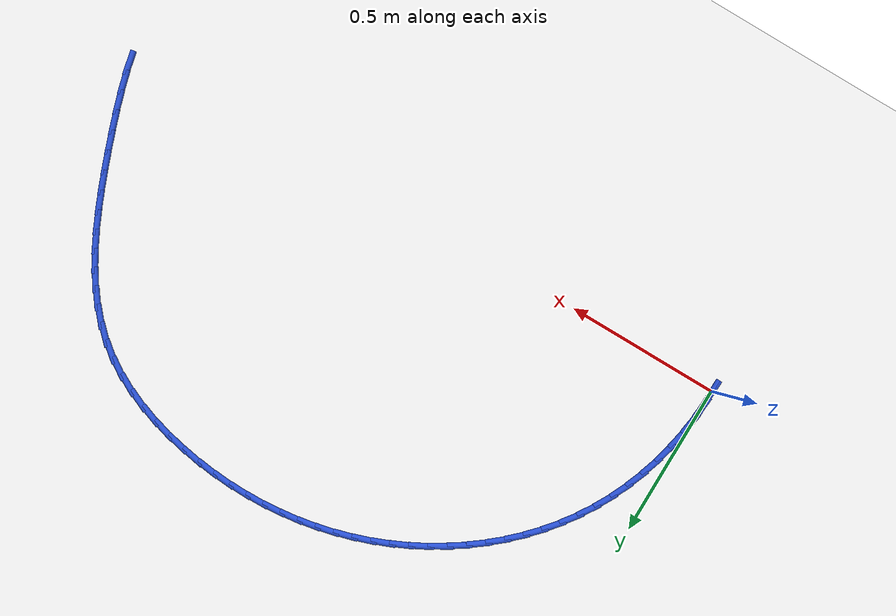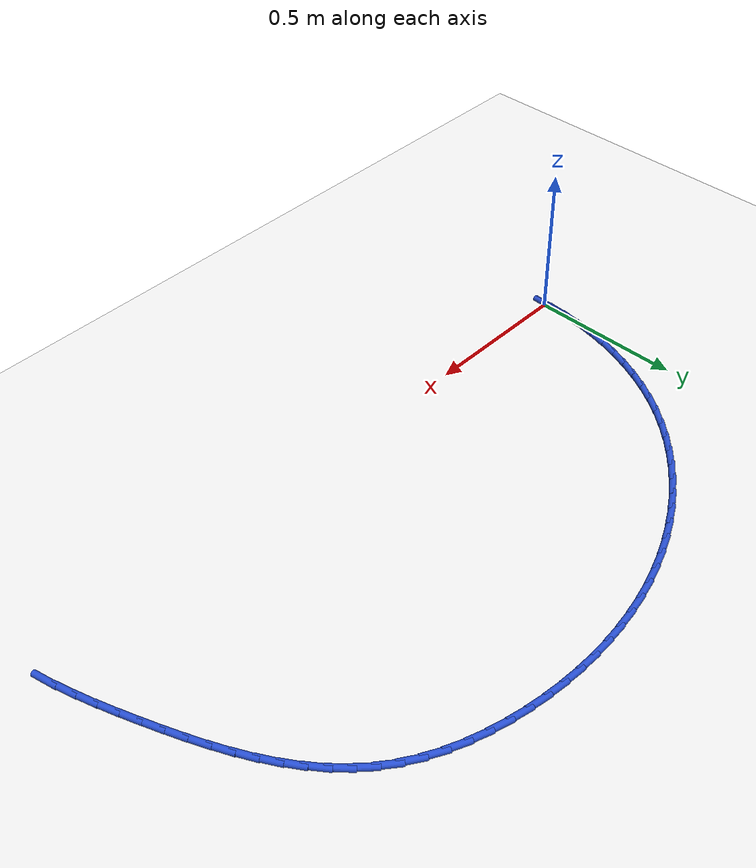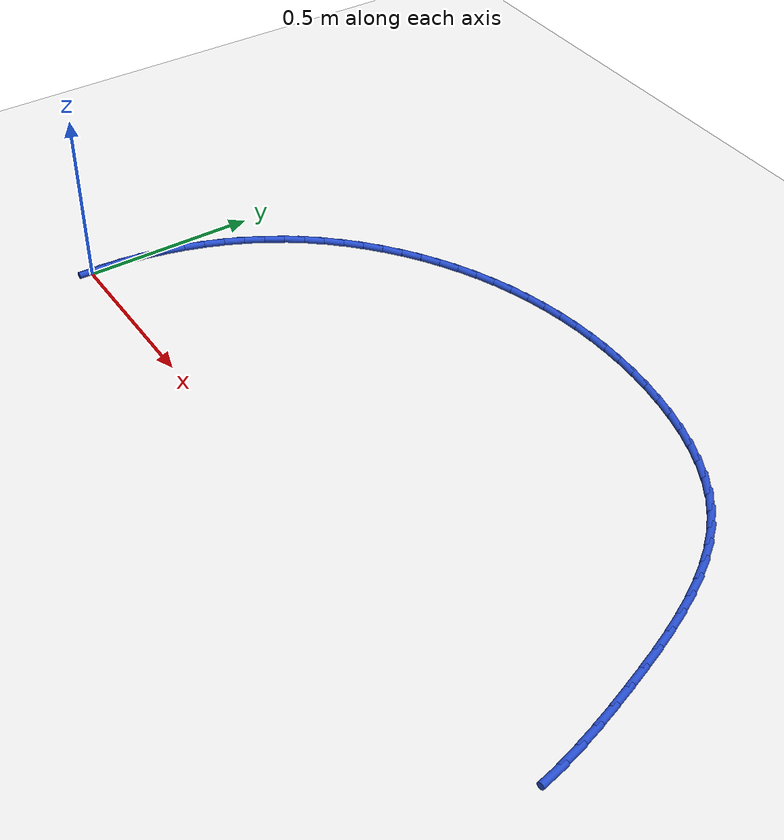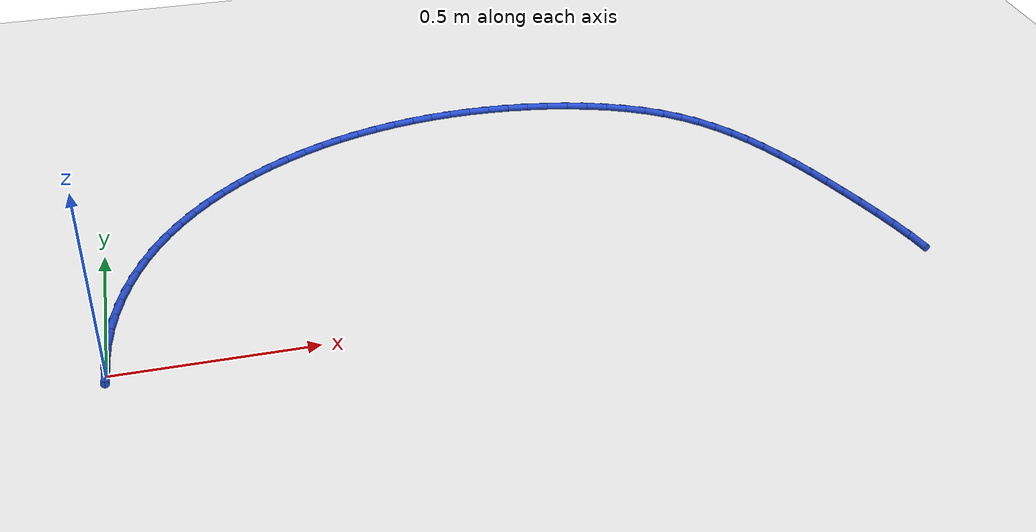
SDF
<sdf version="1.6">
 <world name="default">
  <model name="ground_plane">
   <static>1</static>
   <link name="link">
    <collision name="collision">
     <geometry><plane><normal>0 0 1</normal><size>100 100</size></plane></geometry>
     <surface><friction><ode><mu>100</mu><mu2>50</mu2></ode></friction></surface>
    </collision>
    <visual name="visual">
     <cast_shadows>0</cast_shadows>
     <geometry><plane><normal>0 0 1</normal><size>100 100</size></plane></geometry>
     <material>
      <script><uri>file://media/materials/scripts/gazebo.material</uri><name>Gazebo/WhiteGlow</name></script>
     </material>
    </visual>
   </link>
  </model>
  <model name="line">
   <link name="link_0">
    <pose>6.245004513516506e-17 -5.551115123125783e-17 0.01 0 1.57 1.5422545353050512</pose>
    <collision name="collision">
     <geometry><cylinder><radius>0.01</radius><length>0.08</length></cylinder></geometry>
    </collision>
    <visual name="visual">
     <material>
      <script><name>Gazebo/Blue</name><uri>file://media/materials/scripts/gazebo.material</uri></script>
     </material>
     <geometry><cylinder><radius>0.01</radius><length>0.08</length></cylinder></geometry>
    </visual>
   </link>
   <link name="link_1">
    <pose>0.0017198412556130806 0.06024058501088504 0.01 0 1.57 1.482906403337347</pose>
    <collision name="collision">
     <geometry><cylinder><radius>0.01</radius><length>0.08</length></cylinder></geometry>
    </collision>
    <visual name="visual">
     <material>
      <script><name>Gazebo/Blue</name><uri>file://media/materials/scripts/gazebo.material</uri></script>
     </material>
     <geometry><cylinder><radius>0.01</radius><length>0.08</length></cylinder></geometry>
    </visual>
   </link>
   <link name="link_2">
    <pose>0.006995658251448938 0.12011349415279156 0.01 0 1.57 1.4235357169125398</pose>
    <collision name="collision">
     <geometry><cylinder><radius>0.01</radius><length>0.08</length></cylinder></geometry>
    </collision>
    <visual name="visual">
     <material>
      <script><name>Gazebo/Blue</name><uri>file://media/materials/scripts/gazebo.material</uri></script>
     </material>
     <geometry><cylinder><radius>0.01</radius><length>0.08</length></cylinder></geometry>
    </visual>
   </link>
   <link name="link_3">
    <pose>0.015792316660446903 0.17941637971473812 0.01 0 1.57 1.3639521039334233</pose>
    <collision name="collision">
     <geometry><cylinder><radius>0.01</radius><length>0.08</length></cylinder></geometry>
    </collision>
    <visual name="visual">
     <material>
      <script><name>Gazebo/Blue</name><uri>file://media/materials/scripts/gazebo.material</uri></script>
     </material>
     <geometry><cylinder><radius>0.01</radius><length>0.08</length></cylinder></geometry>
    </visual>
   </link>
   <link name="link_4">
    <pose>0.028074682155546274 0.23794689398574337 0.01 0 1.57 1.3039637577982874</pose>
    <collision name="collision">
     <geometry><cylinder><radius>0.01</radius><length>0.08</length></cylinder></geometry>
    </collision>
    <visual name="visual">
     <material>
      <script><name>Gazebo/Blue</name><uri>file://media/materials/scripts/gazebo.material</uri></script>
     </material>
     <geometry><cylinder><radius>0.01</radius><length>0.08</length></cylinder></geometry>
    </visual>
   </link>
   <link name="link_5">
    <pose>0.043807620409686346 0.2955026892548259 0.01 0 1.57 1.2433820574007861</pose>
    <collision name="collision">
     <geometry><cylinder><radius>0.01</radius><length>0.08</length></cylinder></geometry>
    </collision>
    <visual name="visual">
     <material>
      <script><name>Gazebo/Blue</name><uri>file://media/materials/scripts/gazebo.material</uri></script>
     </material>
     <geometry><cylinder><radius>0.01</radius><length>0.08</length></cylinder></geometry>
    </visual>
   </link>
   <link name="link_6">
    <pose>0.06295599709580636 0.3518814178110041 0.01 0 1.57 1.1820266064572256</pose>
    <collision name="collision">
     <geometry><cylinder><radius>0.01</radius><length>0.08</length></cylinder></geometry>
    </collision>
    <visual name="visual">
     <material>
      <script><name>Gazebo/Blue</name><uri>file://media/materials/scripts/gazebo.material</uri></script>
     </material>
     <geometry><cylinder><radius>0.01</radius><length>0.08</length></cylinder></geometry>
    </visual>
   </link>
   <link name="link_7">
    <pose>0.08548467788684563 0.4068807319432969 0.01 0 1.57 1.1197308585095516</pose>
    <collision name="collision">
     <geometry><cylinder><radius>0.01</radius><length>0.08</length></cylinder></geometry>
    </collision>
    <visual name="visual">
     <material>
      <script><name>Gazebo/Blue</name><uri>file://media/materials/scripts/gazebo.material</uri></script>
     </material>
     <geometry><cylinder><radius>0.01</radius><length>0.08</length></cylinder></geometry>
    </visual>
   </link>
   <link name="link_8">
    <pose>0.11135852845574347 0.46029828394072275 0.01 0 1.57 1.0563484404465557</pose>
    <collision name="collision">
     <geometry><cylinder><radius>0.01</radius><length>0.08</length></cylinder></geometry>
    </collision>
    <visual name="visual">
     <material>
      <script><name>Gazebo/Blue</name><uri>file://media/materials/scripts/gazebo.material</uri></script>
     </material>
     <geometry><cylinder><radius>0.01</radius><length>0.08</length></cylinder></geometry>
    </visual>
   </link>
   <link name="link_9">
    <pose>0.14054241447543914 0.5119317260923003 0.01 0 1.57 0.9918075284965097</pose>
    <collision name="collision">
     <geometry><cylinder><radius>0.01</radius><length>0.08</length></cylinder></geometry>
    </collision>
    <visual name="visual">
     <material>
      <script><name>Gazebo/Blue</name><uri>file://media/materials/scripts/gazebo.material</uri></script>
     </material>
     <geometry><cylinder><radius>0.01</radius><length>0.08</length></cylinder></geometry>
    </visual>
   </link>
   <link name="link_10">
    <pose>0.1729988449360283 0.5615802368410384 0.01 0 1.57 0.9275960890173353</pose>
    <collision name="collision">
     <geometry><cylinder><radius>0.01</radius><length>0.08</length></cylinder></geometry>
    </collision>
    <visual name="visual">
     <material>
      <script><name>Gazebo/Blue</name><uri>file://media/materials/scripts/gazebo.material</uri></script>
     </material>
     <geometry><cylinder><radius>0.01</radius><length>0.08</length></cylinder></geometry>
    </visual>
   </link>
   <link name="link_11">
    <pose>0.20861174765855084 0.6090938826673559 0.01 0 1.57 0.8655169779158036</pose>
    <collision name="collision">
     <geometry><cylinder><radius>0.01</radius><length>0.08</length></cylinder></geometry>
    </collision>
    <visual name="visual">
     <material>
      <script><name>Gazebo/Blue</name><uri>file://media/materials/scripts/gazebo.material</uri></script>
     </material>
     <geometry><cylinder><radius>0.01</radius><length>0.08</length></cylinder></geometry>
    </visual>
   </link>
   <link name="link_12">
    <pose>0.24716992997784215 0.6543843287135226 0.01 0 1.57 0.8055218743646704</pose>
    <collision name="collision">
     <geometry><cylinder><radius>0.01</radius><length>0.08</length></cylinder></geometry>
    </collision>
    <visual name="visual">
     <material>
      <script><name>Gazebo/Blue</name><uri>file://media/materials/scripts/gazebo.material</uri></script>
     </material>
     <geometry><cylinder><radius>0.01</radius><length>0.08</length></cylinder></geometry>
    </visual>
   </link>
   <link name="link_13">
    <pose>0.28845649680297847 0.6973669329308972 0.01 0 1.57 0.7474024139879945</pose>
    <collision name="collision">
     <geometry><cylinder><radius>0.01</radius><length>0.08</length></cylinder></geometry>
    </collision>
    <visual name="visual">
     <material>
      <script><name>Gazebo/Blue</name><uri>file://media/materials/scripts/gazebo.material</uri></script>
     </material>
     <geometry><cylinder><radius>0.01</radius><length>0.08</length></cylinder></geometry>
    </visual>
   </link>
   <link name="link_14">
    <pose>0.332254553043036 0.7379570532708389 0.01 0 1.57 0.6909164010922515</pose>
    <collision name="collision">
     <geometry><cylinder><radius>0.01</radius><length>0.08</length></cylinder></geometry>
    </collision>
    <visual name="visual">
     <material>
      <script><name>Gazebo/Blue</name><uri>file://media/materials/scripts/gazebo.material</uri></script>
     </material>
     <geometry><cylinder><radius>0.01</radius><length>0.08</length></cylinder></geometry>
    </visual>
   </link>
   <link name="link_15">
    <pose>0.37834720360709156 0.7760700476847064 0.01 0 1.57 0.6357970400926016</pose>
    <collision name="collision">
     <geometry><cylinder><radius>0.01</radius><length>0.08</length></cylinder></geometry>
    </collision>
    <visual name="visual">
     <material>
      <script><name>Gazebo/Blue</name><uri>file://media/materials/scripts/gazebo.material</uri></script>
     </material>
     <geometry><cylinder><radius>0.01</radius><length>0.08</length></cylinder></geometry>
    </visual>
   </link>
   <link name="link_16">
    <pose>0.42651755340422115 0.8116212741238589 0.01 0 1.57 0.5817597976097881</pose>
    <collision name="collision">
     <geometry><cylinder><radius>0.01</radius><length>0.08</length></cylinder></geometry>
    </collision>
    <visual name="visual">
     <material>
      <script><name>Gazebo/Blue</name><uri>file://media/materials/scripts/gazebo.material</uri></script>
     </material>
     <geometry><cylinder><radius>0.01</radius><length>0.08</length></cylinder></geometry>
    </visual>
   </link>
   <link name="link_17">
    <pose>0.4765487073435012 0.8445260905396551 0.01 0 1.57 0.5285071727945438</pose>
    <collision name="collision">
     <geometry><cylinder><radius>0.01</radius><length>0.08</length></cylinder></geometry>
    </collision>
    <visual name="visual">
     <material>
      <script><name>Gazebo/Blue</name><uri>file://media/materials/scripts/gazebo.material</uri></script>
     </material>
     <geometry><cylinder><radius>0.01</radius><length>0.08</length></cylinder></geometry>
    </visual>
   </link>
   <link name="link_18">
    <pose>0.5282237703340081 0.8746998548834537 0.01 0 1.57 0.4757317513545048</pose>
    <collision name="collision">
     <geometry><cylinder><radius>0.01</radius><length>0.08</length></cylinder></geometry>
    </collision>
    <visual name="visual">
     <material>
      <script><name>Gazebo/Blue</name><uri>file://media/materials/scripts/gazebo.material</uri></script>
     </material>
     <geometry><cylinder><radius>0.01</radius><length>0.08</length></cylinder></geometry>
    </visual>
   </link>
   <link name="link_19">
    <pose>0.5813258472848185 0.9020579251066144 0.01 0 1.57 0.42311829353588654</pose>
    <collision name="collision">
     <geometry><cylinder><radius>0.01</radius><length>0.08</length></cylinder></geometry>
    </collision>
    <visual name="visual">
     <material>
      <script><name>Gazebo/Blue</name><uri>file://media/materials/scripts/gazebo.material</uri></script>
     </material>
     <geometry><cylinder><radius>0.01</radius><length>0.08</length></cylinder></geometry>
    </visual>
   </link>
   <link name="link_20">
    <pose>0.6356381169394546 0.9265157144742953 0.01 0 1.57 0.37051850703982675</pose>
    <collision name="collision">
     <geometry><cylinder><radius>0.01</radius><length>0.08</length></cylinder></geometry>
    </collision>
    <visual name="visual">
     <material>
      <script><name>Gazebo/Blue</name><uri>file://media/materials/scripts/gazebo.material</uri></script>
     </material>
     <geometry><cylinder><radius>0.01</radius><length>0.08</length></cylinder></geometry>
    </visual>
   </link>
   <link name="link_21">
    <pose>0.690974520587996 0.9480116823152512 0.01 0 1.57 0.3182312223289976</pose>
    <collision name="collision">
     <geometry><cylinder><radius>0.01</radius><length>0.08</length></cylinder></geometry>
    </collision>
    <visual name="visual">
     <material>
      <script><name>Gazebo/Blue</name><uri>file://media/materials/scripts/gazebo.material</uri></script>
     </material>
     <geometry><cylinder><radius>0.01</radius><length>0.08</length></cylinder></geometry>
    </visual>
   </link>
   <link name="link_22">
    <pose>0.747227178427677 0.9665428564536253 0.01 0 1.57 0.2663684517099616</pose>
    <collision name="collision">
     <geometry><cylinder><radius>0.01</radius><length>0.08</length></cylinder></geometry>
    </collision>
    <visual name="visual">
     <material>
      <script><name>Gazebo/Blue</name><uri>file://media/materials/scripts/gazebo.material</uri></script>
     </material>
     <geometry><cylinder><radius>0.01</radius><length>0.08</length></cylinder></geometry>
    </visual>
   </link>
   <link name="link_23">
    <pose>0.8043004459291213 0.9821154308886725 0.01 0 1.57 0.21497468979117962</pose>
    <collision name="collision">
     <geometry><cylinder><radius>0.01</radius><length>0.08</length></cylinder></geometry>
    </collision>
    <visual name="visual">
     <material>
      <script><name>Gazebo/Blue</name><uri>file://media/materials/scripts/gazebo.material</uri></script>
     </material>
     <geometry><cylinder><radius>0.01</radius><length>0.08</length></cylinder></geometry>
    </visual>
   </link>
   <link name="link_24">
    <pose>0.8620986785629526 0.9947355996196484 0.01 0 1.57 0.16408324407698668</pose>
    <collision name="collision">
     <geometry><cylinder><radius>0.01</radius><length>0.08</length></cylinder></geometry>
    </collision>
    <visual name="visual">
     <material>
      <script><name>Gazebo/Blue</name><uri>file://media/materials/scripts/gazebo.material</uri></script>
     </material>
     <geometry><cylinder><radius>0.01</radius><length>0.08</length></cylinder></geometry>
    </visual>
   </link>
   <link name="link_25">
    <pose>0.9205262317997945 1.0044095566458084 0.01 0 1.57 0.11371688870192419</pose>
    <collision name="collision">
     <geometry><cylinder><radius>0.01</radius><length>0.08</length></cylinder></geometry>
    </collision>
    <visual name="visual">
     <material>
      <script><name>Gazebo/Blue</name><uri>file://media/materials/scripts/gazebo.material</uri></script>
     </material>
     <geometry><cylinder><radius>0.01</radius><length>0.08</length></cylinder></geometry>
    </visual>
   </link>
   <link name="link_26">
    <pose>0.9794874611102712 1.0111434959664083 0.01 0 1.57 0.063888737870298</pose>
    <collision name="collision">
     <geometry><cylinder><radius>0.01</radius><length>0.08</length></cylinder></geometry>
    </collision>
    <visual name="visual">
     <material>
      <script><name>Gazebo/Blue</name><uri>file://media/materials/scripts/gazebo.material</uri></script>
     </material>
     <geometry><cylinder><radius>0.01</radius><length>0.08</length></cylinder></geometry>
    </visual>
   </link>
   <link name="link_27">
    <pose>1.0388867219650058 1.0149436115807031 0.01 0 1.57 0.014603277890756113</pose>
    <collision name="collision">
     <geometry><cylinder><radius>0.01</radius><length>0.08</length></cylinder></geometry>
    </collision>
    <visual name="visual">
     <material>
      <script><name>Gazebo/Blue</name><uri>file://media/materials/scripts/gazebo.material</uri></script>
     </material>
     <geometry><cylinder><radius>0.01</radius><length>0.08</length></cylinder></geometry>
    </visual>
   </link>
   <link name="link_28">
    <pose>1.0986283698346222 1.0158160974879482 0.01 0 1.57 -0.03414249933933138</pose>
    <collision name="collision">
     <geometry><cylinder><radius>0.01</radius><length>0.08</length></cylinder></geometry>
    </collision>
    <visual name="visual">
     <material>
      <script><name>Gazebo/Blue</name><uri>file://media/materials/scripts/gazebo.material</uri></script>
     </material>
     <geometry><cylinder><radius>0.01</radius><length>0.08</length></cylinder></geometry>
    </visual>
   </link>
   <link name="link_29">
    <pose>1.1586167601897444 1.0137671476873988 0.01 0 1.57 -0.08235791193319515</pose>
    <collision name="collision">
     <geometry><cylinder><radius>0.01</radius><length>0.08</length></cylinder></geometry>
    </collision>
    <visual name="visual">
     <material>
      <script><name>Gazebo/Blue</name><uri>file://media/materials/scripts/gazebo.material</uri></script>
     </material>
     <geometry><cylinder><radius>0.01</radius><length>0.08</length></cylinder></geometry>
    </visual>
   </link>
   <link name="link_30">
    <pose>1.2187562485009962 1.008802956178311 0.01 0 1.57 -0.13016420866006254</pose>
    <collision name="collision">
     <geometry><cylinder><radius>0.01</radius><length>0.08</length></cylinder></geometry>
    </collision>
    <visual name="visual">
     <material>
      <script><name>Gazebo/Blue</name><uri>file://media/materials/scripts/gazebo.material</uri></script>
     </material>
     <geometry><cylinder><radius>0.01</radius><length>0.08</length></cylinder></geometry>
    </visual>
   </link>
   <link name="link_31">
    <pose>1.2789387682545732 1.0009248033342002 0.01 0 1.57 -0.17959677034749258</pose>
    <collision name="collision">
     <geometry><cylinder><radius>0.01</radius><length>0.08</length></cylinder></geometry>
    </collision>
    <visual name="visual">
     <material>
      <script><name>Gazebo/Blue</name><uri>file://media/materials/scripts/gazebo.material</uri></script>
     </material>
     <geometry><cylinder><radius>0.01</radius><length>0.08</length></cylinder></geometry>
    </visual>
   </link>
   <link name="link_32">
    <pose>1.338841953811252 0.9900492016153145 0.01 0 1.57 -0.2329702816365525</pose>
    <collision name="collision">
     <geometry><cylinder><radius>0.01</radius><length>0.08</length></cylinder></geometry>
    </collision>
    <visual name="visual">
     <material>
      <script><name>Gazebo/Blue</name><uri>file://media/materials/scripts/gazebo.material</uri></script>
     </material>
     <geometry><cylinder><radius>0.01</radius><length>0.08</length></cylinder></geometry>
    </visual>
   </link>
   <link name="link_33">
    <pose>1.3979626036118833 0.9760211322353514 0.01 0 1.57 -0.2912826737884549</pose>
    <collision name="collision">
     <geometry><cylinder><radius>0.01</radius><length>0.08</length></cylinder></geometry>
    </collision>
    <visual name="visual">
     <material>
      <script><name>Gazebo/Blue</name><uri>file://media/materials/scripts/gazebo.material</uri></script>
     </material>
     <geometry><cylinder><radius>0.01</radius><length>0.08</length></cylinder></geometry>
    </visual>
   </link>
   <link name="link_34">
    <pose>1.4557918472892086 0.9586833340608533 0.01 0 1.57 -0.35554222887668857</pose>
    <collision name="collision">
     <geometry><cylinder><radius>0.01</radius><length>0.08</length></cylinder></geometry>
    </collision>
    <visual name="visual">
     <material>
      <script><name>Gazebo/Blue</name><uri>file://media/materials/scripts/gazebo.material</uri></script>
     </material>
     <geometry><cylinder><radius>0.01</radius><length>0.08</length></cylinder></geometry>
    </visual>
   </link>
   <link name="link_35">
    <pose>1.5118208144759706 0.9378785459583636 0.01 0 1.57 -0.4267962427611318</pose>
    <collision name="collision">
     <geometry><cylinder><radius>0.01</radius><length>0.08</length></cylinder></geometry>
    </collision>
    <visual name="visual">
     <material>
      <script><name>Gazebo/Blue</name><uri>file://media/materials/scripts/gazebo.material</uri></script>
     </material>
     <geometry><cylinder><radius>0.01</radius><length>0.08</length></cylinder></geometry>
    </visual>
   </link>
   <link name="link_36">
    <pose>1.5655406348049112 0.9134495067944248 0.01 0 1.57 -0.5060736631699572</pose>
    <collision name="collision">
     <geometry><cylinder><radius>0.01</radius><length>0.08</length></cylinder></geometry>
    </collision>
    <visual name="visual">
     <material>
      <script><name>Gazebo/Blue</name><uri>file://media/materials/scripts/gazebo.material</uri></script>
     </material>
     <geometry><cylinder><radius>0.01</radius><length>0.08</length></cylinder></geometry>
    </visual>
   </link>
   <link name="link_37">
    <pose>1.6164424379087727 0.8852389554355797 0.01 0 1.57 -0.5942730350571853</pose>
    <collision name="collision">
     <geometry><cylinder><radius>0.01</radius><length>0.08</length></cylinder></geometry>
    </collision>
    <visual name="visual">
     <material>
      <script><name>Gazebo/Blue</name><uri>file://media/materials/scripts/gazebo.material</uri></script>
     </material>
     <geometry><cylinder><radius>0.01</radius><length>0.08</length></cylinder></geometry>
    </visual>
   </link>
   <link name="link_38">
    <pose>1.6640173534202967 0.8530896307483712 0.01 0 1.57 -0.6904640786984796</pose>
    <collision name="collision">
     <geometry><cylinder><radius>0.01</radius><length>0.08</length></cylinder></geometry>
    </collision>
    <visual name="visual">
     <material>
      <script><name>Gazebo/Blue</name><uri>file://media/materials/scripts/gazebo.material</uri></script>
     </material>
     <geometry><cylinder><radius>0.01</radius><length>0.08</length></cylinder></geometry>
    </visual>
   </link>
   <link name="link_39">
    <pose>1.707835543657168 0.816890696238509 0.01 0 1.57 -0.7839047924515781</pose>
    <collision name="collision">
     <geometry><cylinder><radius>0.01</radius><length>0.08</length></cylinder></geometry>
    </collision>
    <visual name="visual">
     <material>
      <script><name>Gazebo/Blue</name><uri>file://media/materials/scripts/gazebo.material</uri></script>
     </material>
     <geometry><cylinder><radius>0.01</radius><length>0.08</length></cylinder></geometry>
    </visual>
   </link>
   <link name="link_40">
    <pose>1.7480010837368058 0.7768449414651818 0.01 0 1.57 -0.8688136474920375</pose>
    <collision name="collision">
     <geometry><cylinder><radius>0.01</radius><length>0.08</length></cylinder></geometry>
    </collision>
    <visual name="visual">
     <material>
      <script><name>Gazebo/Blue</name><uri>file://media/materials/scripts/gazebo.material</uri></script>
     </material>
     <geometry><cylinder><radius>0.01</radius><length>0.08</length></cylinder></geometry>
    </visual>
   </link>
   <link name="link_41">
    <pose>1.784839031524995 0.7332849636027756 0.01 0 1.57 -0.9442071261162545</pose>
    <collision name="collision">
     <geometry><cylinder><radius>0.01</radius><length>0.08</length></cylinder></geometry>
    </collision>
    <visual name="visual">
     <material>
      <script><name>Gazebo/Blue</name><uri>file://media/materials/scripts/gazebo.material</uri></script>
     </material>
     <geometry><cylinder><radius>0.01</radius><length>0.08</length></cylinder></geometry>
    </visual>
   </link>
   <link name="link_42">
    <pose>1.8186751498087794 0.6865437739039157 0.01 0 1.57 -1.0097835790348055</pose>
    <collision name="collision">
     <geometry><cylinder><radius>0.01</radius><length>0.08</length></cylinder></geometry>
    </collision>
    <visual name="visual">
     <material>
      <script><name>Gazebo/Blue</name><uri>file://media/materials/scripts/gazebo.material</uri></script>
     </material>
     <geometry><cylinder><radius>0.01</radius><length>0.08</length></cylinder></geometry>
    </visual>
   </link>
   <link name="link_43">
    <pose>1.8498352013752013 0.6369543836212275 0.01 0 1.57 -1.0657128108430414</pose>
    <collision name="collision">
     <geometry><cylinder><radius>0.01</radius><length>0.08</length></cylinder></geometry>
    </collision>
    <visual name="visual">
     <material>
      <script><name>Gazebo/Blue</name><uri>file://media/materials/scripts/gazebo.material</uri></script>
     </material>
     <geometry><cylinder><radius>0.01</radius><length>0.08</length></cylinder></geometry>
    </visual>
   </link>
   <link name="link_44">
    <pose>1.878644949011304 0.5848498040073361 0.01 0 1.57 -1.1124408630608364</pose>
    <collision name="collision">
     <geometry><cylinder><radius>0.01</radius><length>0.08</length></cylinder></geometry>
    </collision>
    <visual name="visual">
     <material>
      <script><name>Gazebo/Blue</name><uri>file://media/materials/scripts/gazebo.material</uri></script>
     </material>
     <geometry><cylinder><radius>0.01</radius><length>0.08</length></cylinder></geometry>
    </visual>
   </link>
   <link name="link_45">
    <pose>1.9054301555041293 0.5305630463148667 0.01 0 1.57 -1.1505339910111307</pose>
    <collision name="collision">
     <geometry><cylinder><radius>0.01</radius><length>0.08</length></cylinder></geometry>
    </collision>
    <visual name="visual">
     <material>
      <script><name>Gazebo/Blue</name><uri>file://media/materials/scripts/gazebo.material</uri></script>
     </material>
     <geometry><cylinder><radius>0.01</radius><length>0.08</length></cylinder></geometry>
    </visual>
   </link>
   <link name="link_46">
    <pose>1.930516583640721 0.4744271217964448 0.01 0 1.57 -1.1805701877994899</pose>
    <collision name="collision">
     <geometry><cylinder><radius>0.01</radius><length>0.08</length></cylinder></geometry>
    </collision>
    <visual name="visual">
     <material>
      <script><name>Gazebo/Blue</name><uri>file://media/materials/scripts/gazebo.material</uri></script>
     </material>
     <geometry><cylinder><radius>0.01</radius><length>0.08</length></cylinder></geometry>
    </visual>
   </link>
   <link name="link_47">
    <pose>1.954229996208121 0.41677504170469526 0.01 0 1.57 -1.2030714097208373</pose>
    <collision name="collision">
     <geometry><cylinder><radius>0.01</radius><length>0.08</length></cylinder></geometry>
    </collision>
    <visual name="visual">
     <material>
      <script><name>Gazebo/Blue</name><uri>file://media/materials/scripts/gazebo.material</uri></script>
     </material>
     <geometry><cylinder><radius>0.01</radius><length>0.08</length></cylinder></geometry>
    </visual>
   </link>
   <link name="link_48">
    <pose>1.9768961559933722 0.35793981729224345 0.01 0 1.57 -1.2186431500449155</pose>
    <collision name="collision">
     <geometry><cylinder><radius>0.01</radius><length>0.08</length></cylinder></geometry>
    </collision>
    <visual name="visual">
     <material>
      <script><name>Gazebo/Blue</name><uri>file://media/materials/scripts/gazebo.material</uri></script>
     </material>
     <geometry><cylinder><radius>0.01</radius><length>0.08</length></cylinder></geometry>
    </visual>
   </link>
   <link name="link_49">
    <pose>1.9988291665506146 0.2982533641794906 0.01 0 1.57 -1.2333068226711015</pose>
    <collision name="collision">
     <geometry><cylinder><radius>0.01</radius><length>0.08</length></cylinder></geometry>
    </collision>
    <visual name="visual">
     <material>
      <script><name>Gazebo/Blue</name><uri>file://media/materials/scripts/gazebo.material</uri></script>
     </material>
     <geometry><cylinder><radius>0.01</radius><length>0.08</length></cylinder></geometry>
    </visual>
   </link>
   <link name="link_50">
    <pose>2.0199686078659753 0.23801240355396183 0.01 0 1.57 -1.254109713572584</pose>
    <collision name="collision">
     <geometry><cylinder><radius>0.01</radius><length>0.08</length></cylinder></geometry>
    </collision>
    <visual name="visual">
     <material>
      <script><name>Gazebo/Blue</name><uri>file://media/materials/scripts/gazebo.material</uri></script>
     </material>
     <geometry><cylinder><radius>0.01</radius><length>0.08</length></cylinder></geometry>
    </visual>
   </link>
   <link name="link_51">
    <pose>2.039808739288266 0.17747180928403616 0.01 0 1.57 -1.281873356958493</pose>
    <collision name="collision">
     <geometry><cylinder><radius>0.01</radius><length>0.08</length></cylinder></geometry>
    </collision>
    <visual name="visual">
     <material>
      <script><name>Gazebo/Blue</name><uri>file://media/materials/scripts/gazebo.material</uri></script>
     </material>
     <geometry><cylinder><radius>0.01</radius><length>0.08</length></cylinder></geometry>
    </visual>
   </link>
   <link name="link_52">
    <pose>2.0578178683271497 0.11688401651236496 0.01 0 1.57 -1.3172510750582422</pose>
    <collision name="collision">
     <geometry><cylinder><radius>0.01</radius><length>0.08</length></cylinder></geometry>
    </collision>
    <visual name="visual">
     <material>
      <script><name>Gazebo/Blue</name><uri>file://media/materials/scripts/gazebo.material</uri></script>
     </material>
     <geometry><cylinder><radius>0.01</radius><length>0.08</length></cylinder></geometry>
    </visual>
   </link>
   <link name="link_53">
    <pose>2.073464302492294 0.05650146038160004 0.01 0 1.57 -1.3611234114547663</pose>
    <collision name="collision">
     <geometry><cylinder><radius>0.01</radius><length>0.08</length></cylinder></geometry>
    </collision>
    <visual name="visual">
     <material>
      <script><name>Gazebo/Blue</name><uri>file://media/materials/scripts/gazebo.material</uri></script>
     </material>
     <geometry><cylinder><radius>0.01</radius><length>0.08</length></cylinder></geometry>
    </visual>
   </link>
   <link name="link_110">
    <pose>4.85722573273506e-17 -4.163336342344337e-17 0.01 0 1.57 1.5420267535874226</pose>
    <collision name="collision">
     <geometry><cylinder><radius>0.01</radius><length>0.08</length></cylinder></geometry>
    </collision>
    <visual name="visual">
     <material>
      <script><name>Gazebo/Blue</name><uri>file://media/materials/scripts/gazebo.material</uri></script>
     </material>
     <geometry><cylinder><radius>0.01</radius><length>0.08</length></cylinder></geometry>
    </visual>
   </link>
   <link name="link_111">
    <pose>0.0017330772439446175 0.060223314951064116 0.01 0 1.57 1.5420267535874228</pose>
    <collision name="collision">
     <geometry><cylinder><radius>0.01</radius><length>0.08</length></cylinder></geometry>
    </collision>
    <visual name="visual">
     <material>
      <script><name>Gazebo/Blue</name><uri>file://media/materials/scripts/gazebo.material</uri></script>
     </material>
     <geometry><cylinder><radius>0.01</radius><length>0.08</length></cylinder></geometry>
    </visual>
   </link>
  </model>
 </world>
</sdf>
